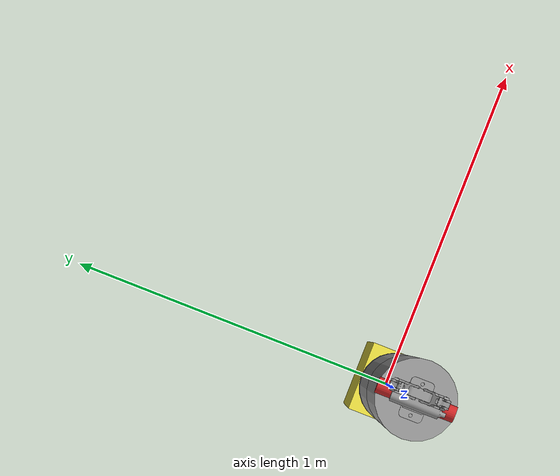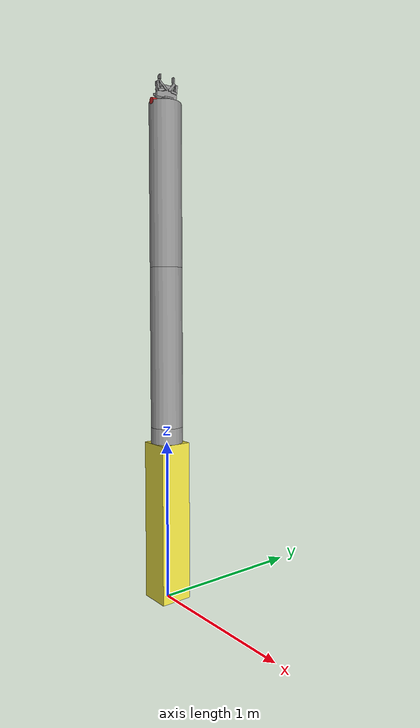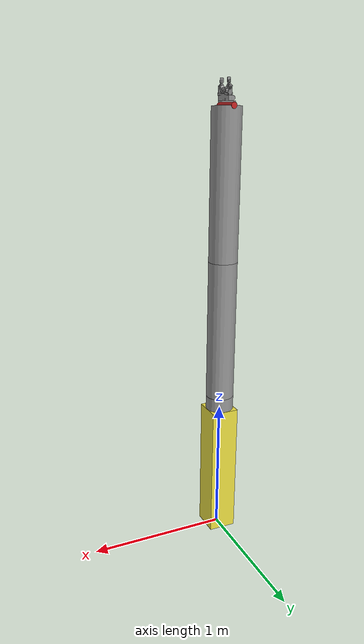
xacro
<?xml version="1.0" ?>

<!--
    Please note that the base link of the 2f gripper is
    "${prefix}robotiq_85_adapter_link"
 -->

<robot name="robotiq_c2_model" xmlns:xacro="http://ros.org/wiki/xacro">
    <xacro:include filename="$(find robotiq_2f_c2_gripper_visualization)/urdf/robotic_c2_transmission.xacro" />
    <xacro:robotiq_c2_model_gazebo prefix=""/>
</robot>

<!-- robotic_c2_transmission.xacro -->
<robot xmlns:xacro="http://ros.org/wiki/xacro">
<xacro:include filename="$(find robotiq_2f_c2_gripper_visualization)/urdf/robotiq_c2_model_macro.xacro"/>
<xacro:macro name="robotiq_c2_model_gazebo" params="prefix">

  <xacro:robotiq_c2_model prefix="${prefix}" />

  <transmission name="${prefix}transmission_hand">
    <type>transmission_interface/SimpleTransmission</type>
    <joint name="${prefix}robotiq_85_left_knuckle_joint">
      <hardwareInterface>hardware_interface/EffortJointInterface</hardwareInterface>
    </joint>
    <actuator name="${prefix}finger_joint_motor">
      <mechanicalReduction>1</mechanicalReduction>
    </actuator>
  </transmission>

  <transmission name="${prefix}tran1">
    <type>transmission_interface/SimpleTransmission</type>
    <joint name="${prefix}joint_a1">
        <hardwareInterface>hardware_interface/EffortJointInterface</hardwareInterface>
    </joint>
    <actuator name="${prefix}motor1">
      <mechanicalReduction>1</mechanicalReduction>
    </actuator>
  </transmission>
  <transmission name="${prefix}tran2">
    <type>transmission_interface/SimpleTransmission</type>
    <joint name="${prefix}joint_a2">
        <hardwareInterface>hardware_interface/EffortJointInterface</hardwareInterface>
    </joint>
    <actuator name="${prefix}motor2">
      <mechanicalReduction>1</mechanicalReduction>
    </actuator>
  </transmission>
  <transmission name="${prefix}tran3">
    <type>transmission_interface/SimpleTransmission</type>
    <joint name="${prefix}joint_a3">
        <hardwareInterface>hardware_interface/EffortJointInterface</hardwareInterface>
    </joint>
    <actuator name="${prefix}motor3">
      <mechanicalReduction>1</mechanicalReduction>
    </actuator>
  </transmission>
  <transmission name="${prefix}tran4">
    <type>transmission_interface/SimpleTransmission</type>
    <joint name="${prefix}joint_a4">
      <hardwareInterface>hardware_interface/EffortJointInterface</hardwareInterface>
    </joint>
    <actuator name="${prefix}motor4">
      <mechanicalReduction>1</mechanicalReduction>
    </actuator>
  </transmission>

  <gazebo>
    <plugin name="gazebo_ros_control" filename="libgazebo_ros_control.so">
      <robotNamespace>/robotiq_c2_model</robotNamespace>
    </plugin>
  </gazebo>
  </xacro:macro>
</robot>

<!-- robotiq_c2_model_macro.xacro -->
<robot xmlns:xacro="http://ros.org/wiki/xacro">

    <xacro:macro name="default_inertial" params="mass">
        <inertial>
            <mass value="${mass}" />
            <inertia ixx="1.0" ixy="0.0" ixz="0.0"
                iyy="1.0" iyz="0.0"
                izz="1.0" />
        </inertial>
    </xacro:macro>

  <xacro:macro name="robotiq_c2_model" params="prefix transmission_hw_interface:=hardware_interface/EffortJointInterface">

  <link name="${prefix}robotiq_85_adapter_link">
    <xacro:default_inertial mass="1"/>
    <visual>
      <geometry>
        <mesh filename="package://robotiq_2f_c2_gripper_visualization/meshes/robotiq_c2/visual/robotiq_85_gripper_adapter_plate.dae"/>
      </geometry>
      <origin rpy="1.5707 0 1.5707" xyz="0 0 0"/>
    </visual>
    <collision>
      <geometry>
        <mesh filename="package://robotiq_2f_c2_gripper_visualization/meshes/robotiq_c2/collision/robotiq_85_gripper_adapter_plate.dae"/>
      </geometry>
      <origin rpy="0 0 1.5707" xyz="0 0 0"/>
    </collision>

    <inertial>
      <origin xyz="0 0 0" rpy="0 0 0"/>
      <mass value="7"/>
      <inertia
          ixx="30160574464.000000" ixy="268355824.000000" ixz="396794944.000000"
          iyy="49449443328.00000" iyz="74363816.000000"
          izz="47570612224.000000"/>
    </inertial>
  </link>
  <gazebo reference="${prefix}robotiq_85_adapter_link">
    <material>Gazebo/Grey</material>
    <turnGravityOff>true</turnGravityOff>
  </gazebo>
  <joint name="${prefix}robotiq_85_base_joint" type="fixed">
    <parent link="${prefix}robotiq_85_adapter_link"/>
    <child link="${prefix}robotiq_85_base_link"/>
    <axis xyz="1 0 0"/>
    <origin rpy="0 0 0" xyz=".0085 0 -.0041"/>
  </joint>

  <link name="${prefix}robotiq_85_base_link">
    <xacro:default_inertial mass="1"/>
    <visual>
      <geometry>
        <mesh filename="package://robotiq_2f_c2_gripper_visualization/meshes/robotiq_c2/visual/robotiq_85_gripper_base.dae"/>
      </geometry>
      <origin rpy="3.1415 0 1.5707" xyz="0 0 0"/>
    </visual>
    <collision>
      <geometry>
        <mesh filename="package://robotiq_2f_c2_gripper_visualization/meshes/robotiq_c2/collision/robotiq_85_gripper_base.dae"/>
      </geometry>
      <origin rpy="1.5707 0 1.5707" xyz="0 0 0"/>
    </collision>
    <inertial>
      <origin xyz="0 0 0" rpy="0 0 0"/>
      <mass value="5"/>
      <inertia
        ixx="29069639680.000000" ixy="16955148.000000" ixz="-75115704.000000"
        iyy="18764271616.000000" iyz="180538688.000000"
        izz="20780234752.000000"/>
    </inertial>
  </link>
  <gazebo reference="${prefix}robotiq_85_base_link">
    <material>Gazebo/Grey</material>
    <turnGravityOff>true</turnGravityOff>
  </gazebo>
  <joint name="${prefix}robotiq_85_left_knuckle_joint" type="revolute">
    <parent link="${prefix}robotiq_85_base_link"/>
    <child link="${prefix}robotiq_85_left_knuckle_link"/>
    <axis xyz="1 0 0"/>
    <origin rpy="-1.5707 1.5707 0" xyz=".04191 .0306 0"/>
    <limit lower="0" upper=".8575" velocity="2.0" effort="1000"/>
  </joint>

  <joint name="${prefix}robotiq_85_right_knuckle_joint" type="revolute">
    <parent link="${prefix}robotiq_85_base_link"/>
    <child link="${prefix}robotiq_85_right_knuckle_link"/>
    <axis xyz="1 0 0"/>
    <origin rpy="1.5707 -1.5707 0" xyz=".04191 -.0306 0"/>
    <limit lower="0" upper="1.5707" velocity="2.0" effort="1000"/>
    <mimic joint="${prefix}robotiq_85_left_knuckle_joint" multiplier="1"/>
  </joint>

  <link name="${prefix}robotiq_85_left_knuckle_link">
    <xacro:default_inertial mass="1"/>
    <visual>
      <geometry>
        <mesh filename="package://robotiq_2f_c2_gripper_visualization/meshes/robotiq_c2/visual/robotiq_85_gripper_joint_0_L.dae"/>
      </geometry>
      <origin rpy="3.14159 -1.5707 0" xyz="0 .04191 -.0306"/>
    </visual>
    <collision>
      <geometry>
        <mesh filename="package://robotiq_2f_c2_gripper_visualization/meshes/robotiq_c2/collision/robotiq_85_gripper_joint_0_L.dae"/>
      </geometry>
      <origin rpy="1.5707 -1.5707 0" xyz="0 .04191 -.0306"/>
    </collision>
    <inertial>
      <origin xyz="0 0 0" rpy="0 0 0"/>
      <mass value="5"/>
      <inertia
        ixx="29069639680.000000" ixy="16955148.000000" ixz="-75115704.000000"
        iyy="18764271616.000000" iyz="180538688.000000"
        izz="20780234752.000000"/>
    </inertial>
  </link>

  <gazebo reference="${prefix}robotiq_85_left_knuckle_link">
    <material>Gazebo/Grey</material>
    <turnGravityOff>true</turnGravityOff>
  </gazebo>

  <link name="${prefix}robotiq_85_right_knuckle_link">
    <xacro:default_inertial mass="1"/>
    <visual>
      <geometry>
        <mesh filename="package://robotiq_2f_c2_gripper_visualization/meshes/robotiq_c2/visual/robotiq_85_gripper_joint_0_R.dae"/>
      </geometry>
      <origin rpy="3.14159 1.5707 0" xyz="0 .04191 -.0306"/>
    </visual>
    <collision>
      <geometry>
        <mesh filename="package://robotiq_2f_c2_gripper_visualization/meshes/robotiq_c2/collision/robotiq_85_gripper_joint_0_R.dae"/>
      </geometry>
      <origin rpy="1.5707 1.5707 0" xyz="0 .04191 -.0306"/>
    </collision>
    <inertial>
      <origin xyz="0 0 0" rpy="0 0 0"/>
      <mass value="5"/>
      <inertia
        ixx="29069639680.000000" ixy="16955148.000000" ixz="-75115704.000000"
        iyy="18764271616.000000" iyz="180538688.000000"
        izz="20780234752.000000"/>
    </inertial>
  </link>

  <gazebo reference="${prefix}robotiq_85_right_knuckle_link">
    <material>Gazebo/Grey</material>
    <turnGravityOff>true</turnGravityOff>
  </gazebo>
  <joint name="${prefix}robotiq_85_left_finger_joint" type="fixed">
    <parent link="${prefix}robotiq_85_left_knuckle_link"/>
    <child link="${prefix}robotiq_85_left_finger_link"/>
    <axis xyz="1 0 0"/>
    <origin rpy="3.1415 0 0" xyz="0 .00508 .03134"/>
    <limit lower="0" upper="1.5707" velocity="2.0" effort="1000"/>
  </joint>

  <joint name="${prefix}robotiq_85_right_finger_joint" type="fixed">
    <parent link="${prefix}robotiq_85_right_knuckle_link"/>
    <child link="${prefix}robotiq_85_right_finger_link"/>
    <axis xyz="1 0 0"/>
    <origin rpy="3.1415 0 0" xyz="0 .00508 .03134"/>
    <limit lower="0" upper="1.5707" velocity="2.0" effort="1000"/>
  </joint>

  <link name="${prefix}robotiq_85_left_finger_link">
    <xacro:default_inertial mass="1"/>
    <visual>
      <geometry>
        <mesh filename="package://robotiq_2f_c2_gripper_visualization/meshes/robotiq_c2/visual/robotiq_85_gripper_joint_1_L.dae"/>
      </geometry>
      <origin rpy="0 1.5707 0" xyz="0 -.03683 .06194"/>
    </visual>
    <collision>
      <geometry>
        <mesh filename="package://robotiq_2f_c2_gripper_visualization/meshes/robotiq_c2/collision/robotiq_85_gripper_joint_1_L.dae"/>
      </geometry>
      <origin rpy="-1.5707 1.5707 0" xyz="0 -.03683 .06194"/>
    </collision>
    <inertial>
      <origin xyz="0 0 0" rpy="0 0 0"/>
      <mass value="5"/>
      <inertia
        ixx="29069639680.000000" ixy="16955148.000000" ixz="-75115704.000000"
        iyy="18764271616.000000" iyz="180538688.000000"
        izz="20780234752.000000"/>
    </inertial>
  </link>

  <gazebo reference="${prefix}robotiq_85_left_finger_link">
    <material>Gazebo/Grey</material>
    <turnGravityOff>true</turnGravityOff>
  </gazebo>

  <link name="${prefix}robotiq_85_right_finger_link">
    <xacro:default_inertial mass="1"/>
    <visual>
      <geometry>
        <mesh filename="package://robotiq_2f_c2_gripper_visualization/meshes/robotiq_c2/visual/robotiq_85_gripper_joint_1_R.dae"/>
      </geometry>
      <origin rpy="0 -1.5707 0" xyz="0 -.03683 .06194"/>
    </visual>
    <collision>
      <geometry>
        <mesh filename="package://robotiq_2f_c2_gripper_visualization/meshes/robotiq_c2/collision/robotiq_85_gripper_joint_1_R.dae"/>
      </geometry>
      <origin rpy="-1.5707 -1.5707 0" xyz="0 -.03683 .06194"/>
    </collision>
    <inertial>
      <origin xyz="0 0 0" rpy="0 0 0"/>
      <mass value="5"/>
      <inertia
        ixx="29069639680.000000" ixy="16955148.000000" ixz="-75115704.000000"
        iyy="18764271616.000000" iyz="180538688.000000"
        izz="20780234752.000000"/>
    </inertial>
  </link>

  <gazebo reference="${prefix}robotiq_85_right_finger_link">
    <material>Gazebo/Grey</material>
    <turnGravityOff>true</turnGravityOff>
  </gazebo>
  <joint name="${prefix}robotiq_85_left_inner_knuckle_joint" type="revolute">
    <parent link="${prefix}robotiq_85_base_link"/>
    <child link="${prefix}robotiq_85_left_inner_knuckle_link"/>
    <axis xyz="1 0 0"/>
    <origin rpy="1.5707 1.5707 0" xyz=".04843 .0127 0"/>
    <limit lower="0" upper="1.5707" velocity="2.0" effort="1000"/>
    <mimic joint="${prefix}robotiq_85_left_knuckle_joint" offset="0"/>
  </joint>

  <joint name="${prefix}robotiq_85_right_inner_knuckle_joint" type="revolute">
    <parent link="${prefix}robotiq_85_base_link"/>
    <child link="${prefix}robotiq_85_right_inner_knuckle_link"/>
    <axis xyz="1 0 0"/>
    <origin rpy="-1.5707 -1.5707 0" xyz=".04843 -.0127 0"/>
    <limit lower="0" upper="1.5707" velocity="2.0" effort="1000"/>
    <mimic joint="${prefix}robotiq_85_left_knuckle_joint" offset="0"/>
  </joint>

  <link name="${prefix}robotiq_85_left_inner_knuckle_link">
    <xacro:default_inertial mass="1"/>
    <visual>
      <geometry>
        <mesh filename="package://robotiq_2f_c2_gripper_visualization/meshes/robotiq_c2/visual/robotiq_85_gripper_joint_2_L.dae"/>
      </geometry>
      <origin rpy="0 1.5707 0" xyz="0 -.04843 .0127"/>
    </visual>
    <collision>
      <geometry>
        <mesh filename="package://robotiq_2f_c2_gripper_visualization/meshes/robotiq_c2/collision/robotiq_85_gripper_joint_2_L.dae"/>
      </geometry>
      <origin rpy="-1.5707 1.5707 0" xyz="0 -.04843 .0127"/>
    </collision>
    <inertial>
      <origin xyz="0 0 0" rpy="0 0 0"/>
      <mass value="5"/>
      <inertia
        ixx="29069639680.000000" ixy="16955148.000000" ixz="-75115704.000000"
        iyy="18764271616.000000" iyz="180538688.000000"
        izz="20780234752.000000"/>
    </inertial>
  </link>

  <gazebo reference="${prefix}robotiq_85_left_inner_knuckle_link">
    <material>Gazebo/Grey</material>
    <turnGravityOff>true</turnGravityOff>
  </gazebo>

  <link name="${prefix}robotiq_85_right_inner_knuckle_link">
    <xacro:default_inertial mass="1"/>
    <visual>
      <geometry>
        <mesh filename="package://robotiq_2f_c2_gripper_visualization/meshes/robotiq_c2/visual/robotiq_85_gripper_joint_2_R.dae"/>
      </geometry>
      <origin rpy="0 -1.5707 0" xyz="0 -.04843 .0127"/>
    </visual>
    <collision>
      <geometry>
        <mesh filename="package://robotiq_2f_c2_gripper_visualization/meshes/robotiq_c2/collision/robotiq_85_gripper_joint_2_R.dae"/>
      </geometry>
      <origin rpy="-1.5707 -1.5707 0" xyz="0 -.04843 .0127"/>
    </collision>
    <inertial>
      <origin xyz="0 0 0" rpy="0 0 0"/>
      <mass value="5"/>
      <inertia
        ixx="29069639680.000000" ixy="16955148.000000" ixz="-75115704.000000"
        iyy="18764271616.000000" iyz="180538688.000000"
        izz="20780234752.000000"/>
    </inertial>
  </link>

  <gazebo reference="${prefix}robotiq_85_right_inner_knuckle_link">
    <material>Gazebo/Grey</material>
    <turnGravityOff>true</turnGravityOff>
  </gazebo>
  <joint name="${prefix}robotiq_85_left_finger_tip_joint" type="revolute">
    <parent link="${prefix}robotiq_85_left_inner_knuckle_link"/>
    <child link="${prefix}robotiq_85_left_finger_tip_link"/>
    <axis xyz="1 0 0"/>
    <origin rpy="0 0 0" xyz="0 .04196 -.0388"/>
    <limit lower="0" upper="1.5707" velocity="2.0" effort="1000"/>
    <mimic joint="${prefix}robotiq_85_left_knuckle_joint" multiplier="-1"/>
  </joint>

  <joint name="${prefix}robotiq_85_right_finger_tip_joint" type="revolute">
    <parent link="${prefix}robotiq_85_right_inner_knuckle_link"/>
    <child link="${prefix}robotiq_85_right_finger_tip_link"/>
    <axis xyz="1 0 0"/>
    <origin rpy="0 0 0" xyz="0 .04196 -.0388"/>
    <limit lower="0" upper="1.5707" velocity="2.0" effort="1000"/>
    <mimic joint="${prefix}robotiq_85_left_knuckle_joint" multiplier="-1"/>
  </joint>

  <link name="${prefix}robotiq_85_left_finger_tip_link">
    <xacro:default_inertial mass="1"/>
    <visual>
      <geometry>
        <mesh filename="package://robotiq_2f_c2_gripper_visualization/meshes/robotiq_c2/visual/robotiq_85_gripper_joint_3_L.dae"/>
      </geometry>
      <origin rpy="0 1.5707 0" xyz="0 -.090381 .051505"/>
    </visual>
    <collision>
      <geometry>
        <mesh filename="package://robotiq_2f_c2_gripper_visualization/meshes/robotiq_c2/collision/robotiq_85_gripper_joint_3_L.dae"/>
      </geometry>
      <origin rpy="-1.5707 1.5707 0" xyz="0 -.090381 .051505"/>
    </collision>
    <inertial>
      <origin xyz="0 0 0" rpy="0 0 0"/>
      <mass value="5"/>
      <inertia
        ixx="29069639680.000000" ixy="16955148.000000" ixz="-75115704.000000"
        iyy="18764271616.000000" iyz="180538688.000000"
        izz="20780234752.000000"/>
    </inertial>
  </link>

  <gazebo reference="${prefix}robotiq_85_left_finger_tip_link">
    <material>Gazebo/Grey</material>
    <turnGravityOff>true</turnGravityOff>
  </gazebo>

  <link name="${prefix}robotiq_85_right_finger_tip_link">
    <xacro:default_inertial mass="1"/>
    <visual>
      <geometry>
        <mesh filename="package://robotiq_2f_c2_gripper_visualization/meshes/robotiq_c2/visual/robotiq_85_gripper_joint_3_R.dae"/>
      </geometry>
      <origin rpy="0 -1.5707 0" xyz="0 -.090381 .051505"/>
    </visual>
    <collision>
      <geometry>
        <mesh filename="package://robotiq_2f_c2_gripper_visualization/meshes/robotiq_c2/collision/robotiq_85_gripper_joint_3_R.dae"/>
      </geometry>
      <origin rpy="-1.5707 -1.5707 0" xyz="0 -.090381 .051505"/>
    </collision>
    <inertial>
      <origin xyz="0 0 0" rpy="0 0 0"/>
      <mass value="5"/>
      <inertia
        ixx="29069639680.000000" ixy="16955148.000000" ixz="-75115704.000000"
        iyy="18764271616.000000" iyz="180538688.000000"
        izz="20780234752.000000"/>
    </inertial>
  </link>
  <gazebo reference="${prefix}robotiq_85_right_finger_tip_link">
    <material>Gazebo/Grey</material>
    <turnGravityOff>true</turnGravityOff>
  </gazebo>

  <link name="world"/>

  <!-- base_link and its fixed joint -->
  <joint name="joint_fix" type="fixed">
    <parent link="world"/>
    <child link="${prefix}base_link"/>
  </joint>

  <link name="${prefix}base_link">
    <collision>
      <origin xyz="0 0 0.5" rpy="0 0 0"/>
      <geometry>
        <box size="0.2 0.2 0.7"/>
      </geometry>
    </collision>

    <visual>
      <origin xyz="0 0 0.5" rpy="0 0 0"/>
      <geometry>
        <box size="0.2 0.2 1"/>
      </geometry>
    </visual>

    <inertial>
      <origin xyz="0 0 0.5" rpy="0 0 0"/>
      <mass value="1"/>
      <inertia
        ixx="1.0" ixy="0.0" ixz="0.0"
        iyy="1.0" iyz="0.0"
        izz="1.0"/>
    </inertial>
  </link>

  <!-- link1 and its revolute joint1 relative to base_link -->
  <!-- rotating along z axis -->
  <joint name="${prefix}joint_a1" type="revolute">
    <parent link="${prefix}base_link"/>
    <child link="${prefix}link_1"/>
    <origin xyz="0 0 1" rpy="0 0 0"/>
    <axis xyz="0 0 1"/>
    <limit effort="100" velocity="100" lower="-1.5708" upper="1.5708"/>
  </joint>

  <link name="${prefix}link_1">
    <collision>
      <origin xyz="0 0 0.05" rpy="0 0 0"/>
      <geometry>
        <cylinder length="0.1" radius="0.1"/>
      </geometry>
    </collision>

    <visual>
      <origin xyz="0 0 0.05" rpy="0 0 0"/>
      <geometry>
        <cylinder length="0.1" radius="0.1"/>
      </geometry>
    </visual>

    <inertial>
      <origin xyz="0 0 0.05" rpy="0 0 0"/>
      <mass value="1"/>
      <inertia
        ixx="0.001" ixy="0.0" ixz="0.0"
        iyy="0.001" iyz="0.0"
        izz="0.001"/>
    </inertial>
  </link>

  <gazebo reference="${prefix}link_1">
    <material>Gazebo/Grey</material>
    <turnGravityOff>true</turnGravityOff>
  </gazebo>

  <!-- link2 and its revolute joint2 relative to link1 -->
  <!-- rotating along y axis -->
  <joint name="${prefix}joint_a2" type="revolute">
    <parent link="${prefix}link_1"/>
    <child link="${prefix}link_2"/>
    <origin xyz="0 0 0.1" rpy="0 0 0"/>
    <axis xyz="0 1 0"/>
    <limit effort="100" velocity="100" lower="-0.1" upper="1.5708"/>
  </joint>

  <link name="${prefix}link_2">
    <collision>
      <origin xyz="0 0 0.5" rpy="0 0 0"/>
      <geometry>
        <cylinder length="1" radius="0.1"/>
      </geometry>
    </collision>

    <visual>
      <origin xyz="0 0 0.5" rpy="0 0 0"/>
      <geometry>
        <cylinder length="1" radius="0.1"/>
      </geometry>
    </visual>

    <inertial>
      <origin xyz="0 0 0.5" rpy="0 0 0"/>
      <mass value="1"/>
      <inertia
        ixx="0.1" ixy="0.0" ixz="0.0"
        iyy="0.1" iyz="0.0"
        izz="0.005"/>
    </inertial>
  </link>

  <gazebo reference="${prefix}link_2">
    <material>Gazebo/Grey</material>
    <turnGravityOff>true</turnGravityOff>
  </gazebo>

  <!-- link3 and its revolute joint3 relative to link2 -->
  <!-- rotating along y axis -->
  <joint name="${prefix}joint_a3" type="revolute">
    <parent link="${prefix}link_2"/>
    <child link="${prefix}link_3"/>
    <origin xyz="0 0 1" rpy="0 0 0"/>
    <axis xyz="0 1 0"/>
    <limit effort="100" velocity="100" lower="-0.1" upper="3.1416"/>
  </joint>

  <link name="${prefix}link_3">
    <collision>
      <origin xyz="0 0 0.5" rpy="0 0 0"/>
      <geometry>
        <cylinder length="1" radius="0.1"/>
      </geometry>
    </collision>

    <visual>
      <origin xyz="0 0 0.5" rpy="0 0 0"/>
      <geometry>
        <cylinder length="1" radius="0.1"/>
      </geometry>
    </visual>

    <inertial>
      <origin xyz="0 0 0.5" rpy="0 0 0"/>
      <mass value="1"/>
      <inertia
        ixx="0.1" ixy="0.0" ixz="0.0"
        iyy="0.1" iyz="0.0"
        izz="0.005"/>
    </inertial>
  </link>

  <gazebo reference="${prefix}link_3">
    <material>Gazebo/Grey</material>
    <turnGravityOff>true</turnGravityOff>
  </gazebo>

  <!-- link4 and its revolute joint4 relative to link3 -->
  <!-- rotating along y axis -->
  <joint name="${prefix}joint_a4" type="revolute">
    <parent link="${prefix}link_3"/>
    <child link="${prefix}link_4"/>
    <origin xyz="0 0 1" rpy="0 0 0"/>
    <axis xyz="0 1 0"/>
    <limit effort="100" velocity="100" lower="-1.5708" upper="1.5708"/>
  </joint>

  <link name="${prefix}link_4">
    <collision>
      <origin xyz="0 0 0" rpy="1.5708 0 0"/>
      <geometry>
        <cylinder length="0.4" radius="0.04"/>
      </geometry>
    </collision>

    <visual>
      <origin xyz="0 0 0" rpy="1.5708 0 0"/>
      <geometry>
        <cylinder length="0.2" radius="0.02"/>
      </geometry>
    </visual>

    <inertial>
      <origin xyz="0 0 0" rpy="1.5708 0 0"/>
      <mass value="0.4"/>
      <inertia
        ixx="0.05" ixy="0.0" ixz="0.0"
        iyy="0.002" iyz="0.0"
        izz="0.05"/>
    </inertial>
  </link>

  <gazebo reference="${prefix}link_4">
    <material>Gazebo/Red</material>
    <turnGravityOff>true</turnGravityOff>
  </gazebo>

  <joint name="hand_joint" type="fixed">
    <parent link="${prefix}link_4"/>
    <child link="${prefix}robotiq_85_adapter_link"/>
    <origin xyz="0 0 0.02" rpy="0 -1.57 0"/>
    <axis xyz="0 0 0"/>
  </joint>
  </xacro:macro>
</robot>
